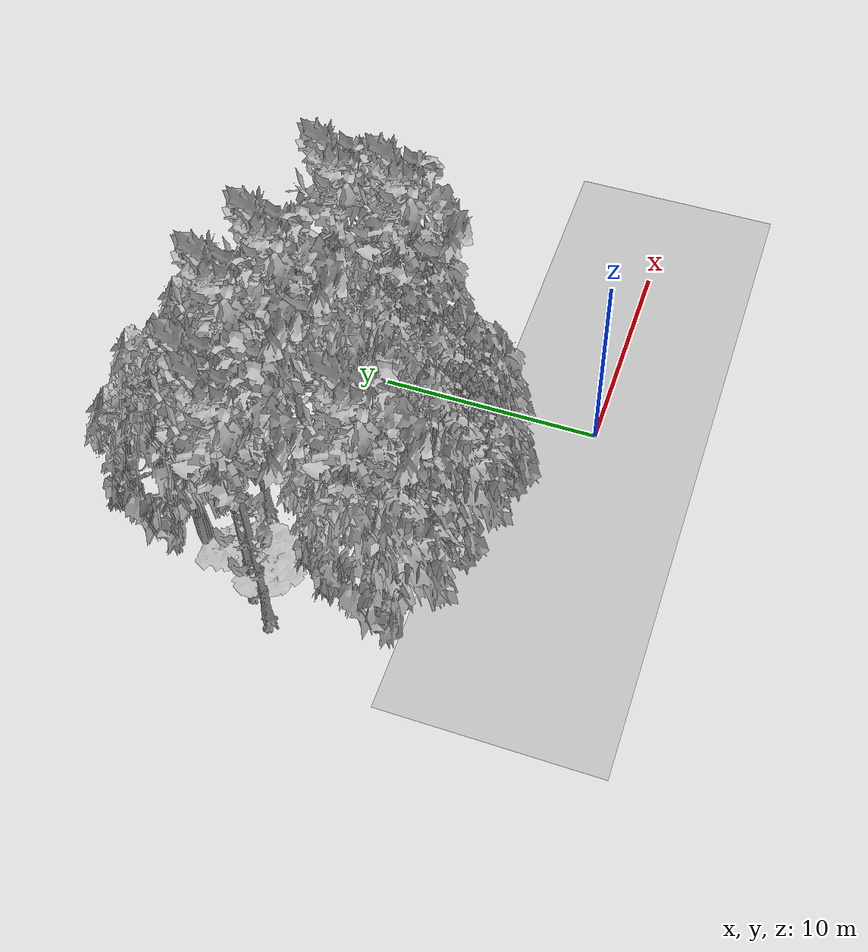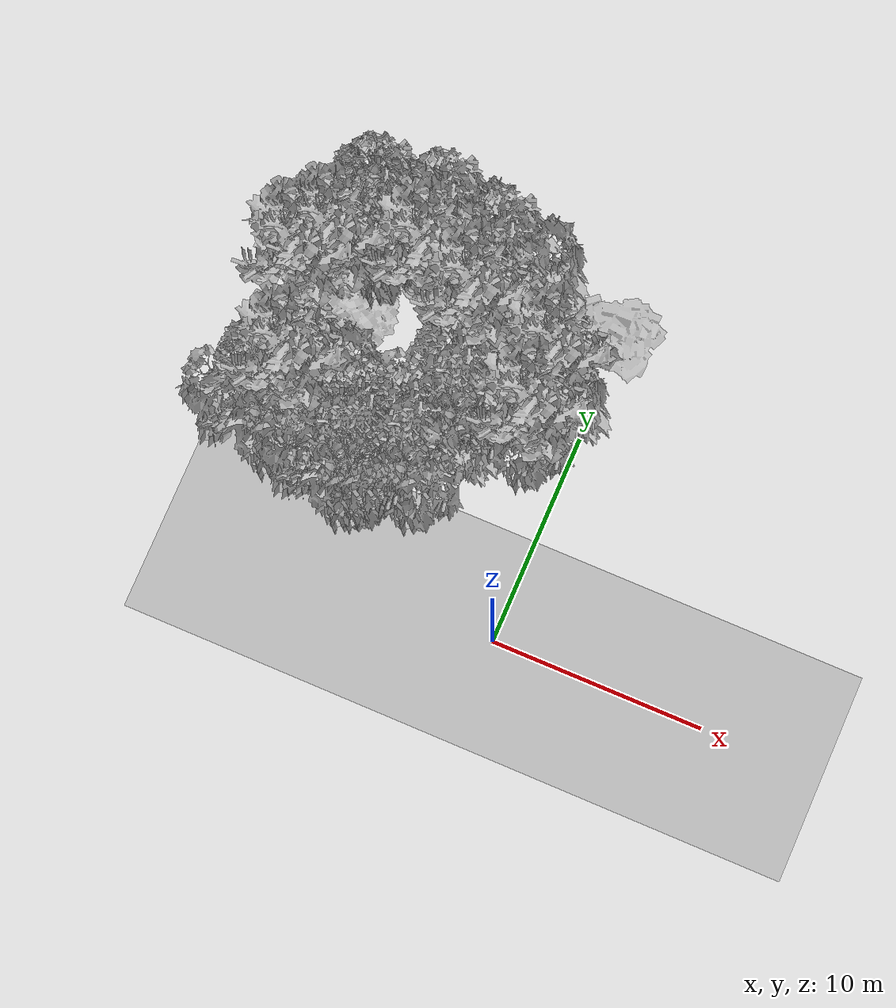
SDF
<sdf version="1.7">
 <world name="default">
  <model name="ground_plane">
   <static>1</static>
   <link name="link">
    <collision name="collision">
     <pose>-50 0 0 0 -0 0</pose>
     <geometry><plane><normal>0 0 1</normal><size>100 100</size></plane></geometry>
     <surface><contact><ode><min_depth>0.01</min_depth><max_vel>0</max_vel></ode></contact></surface>
    </collision>
    <visual name="grass">
     <cast_shadows>0</cast_shadows>
     <geometry>
      <mesh>
       <scale>0.5814285714285714 0.18142857142857144 0.1</scale>
       <uri>file://grass_plane/meshes/grass_plane.dae</uri>
      </mesh>
     </geometry>
    </visual>
   </link>
  </model>
  <model name="Tree 39">
   <static>1</static>
   <pose>-11.20924688243312 13.90650982413737 0 1.57079 -0 0</pose>
   <link name="link">
    <collision name="collision">
     <geometry><mesh><scale>3.5 5 3.5</scale><uri>model://tree_2/meshes/tree_2.obj</uri></mesh></geometry>
    </collision>
    <visual name="visual">
     <geometry><mesh><scale>3.5 5 3.5</scale><uri>model://tree_2/meshes/tree_2.obj</uri></mesh></geometry>
    </visual>
   </link>
  </model>
  <model name="Tree 50">
   <static>1</static>
   <pose>-11.510446245910678 6.082373281519526 0 1.57079 -0 0</pose>
   <link name="link">
    <collision name="collision">
     <geometry><mesh><scale>3.5 5 3.5</scale><uri>model://tree_2/meshes/tree_2.obj</uri></mesh></geometry>
    </collision>
    <visual name="visual">
     <geometry><mesh><scale>3.5 5 3.5</scale><uri>model://tree_2/meshes/tree_2.obj</uri></mesh></geometry>
    </visual>
   </link>
  </model>
  <model name="Tree 57">
   <static>1</static>
   <pose>-12.247379011109956 11.465169934383916 0 1.57079 -0 0</pose>
   <link name="link">
    <collision name="collision">
     <geometry><mesh><scale>3.5 5 3.5</scale><uri>model://tree_9/meshes/tree_9.obj</uri></mesh></geometry>
    </collision>
    <visual name="visual">
     <geometry><mesh><scale>3.5 5 3.5</scale><uri>model://tree_9/meshes/tree_9.obj</uri></mesh></geometry>
    </visual>
   </link>
  </model>
  <model name="Tree 64">
   <static>1</static>
   <pose>-5.319679257388884 8.58729724973804 0 1.57079 -0 0</pose>
   <link name="link">
    <collision name="collision">
     <geometry><mesh><scale>3 2 3</scale><uri>model://tree_3/meshes/tree_3.obj</uri></mesh></geometry>
    </collision>
    <visual name="visual">
     <geometry><mesh><scale>3 2 3</scale><uri>model://tree_3/meshes/tree_3.obj</uri></mesh></geometry>
    </visual>
   </link>
  </model>
  <model name="Tree 71">
   <static>1</static>
   <pose>-0.4105227731862797 14.567927577450835 0 1.57079 -0 0</pose>
   <link name="link">
    <collision name="collision">
     <geometry><mesh><scale>3 2 3</scale><uri>model://tree_3/meshes/tree_3.obj</uri></mesh></geometry>
    </collision>
    <visual name="visual">
     <geometry><mesh><scale>3 2 3</scale><uri>model://tree_3/meshes/tree_3.obj</uri></mesh></geometry>
    </visual>
   </link>
  </model>
  <model name="Tree 133">
   <static>1</static>
   <pose>-7.875646374536423 4.651870620772691 0 1.57079 -0 0</pose>
   <link name="link">
    <collision name="collision">
     <geometry><mesh><scale>3.5 5 3.5</scale><uri>model://tree_2/meshes/tree_2.obj</uri></mesh></geometry>
    </collision>
    <visual name="visual">
     <geometry><mesh><scale>3.5 5 3.5</scale><uri>model://tree_2/meshes/tree_2.obj</uri></mesh></geometry>
    </visual>
   </link>
  </model>
  <model name="Tree 149">
   <static>1</static>
   <pose>-1.7350411465494986 7.921373255774419 0 1.57079 -0 0</pose>
   <link name="link">
    <collision name="collision">
     <geometry><mesh><scale>3.5 5 3.5</scale><uri>model://tree_9/meshes/tree_9.obj</uri></mesh></geometry>
    </collision>
    <visual name="visual">
     <geometry><mesh><scale>3.5 5 3.5</scale><uri>model://tree_9/meshes/tree_9.obj</uri></mesh></geometry>
    </visual>
   </link>
  </model>
  <model name="Tree 203">
   <static>1</static>
   <pose>-8.065576167677882 4.343472900862199 0 1.57079 -0 0</pose>
   <link name="link">
    <collision name="collision">
     <geometry><mesh><scale>3.5 5 3.5</scale><uri>model://tree_2/meshes/tree_2.obj</uri></mesh></geometry>
    </collision>
    <visual name="visual">
     <geometry><mesh><scale>3.5 5 3.5</scale><uri>model://tree_2/meshes/tree_2.obj</uri></mesh></geometry>
    </visual>
   </link>
  </model>
  <model name="Tree 220">
   <static>1</static>
   <pose>-11.897047402137176 6.034604951431319 0 1.57079 -0 0</pose>
   <link name="link">
    <collision name="collision">
     <geometry><mesh><scale>3.5 5 3.5</scale><uri>model://tree_9/meshes/tree_9.obj</uri></mesh></geometry>
    </collision>
    <visual name="visual">
     <geometry><mesh><scale>3.5 5 3.5</scale><uri>model://tree_9/meshes/tree_9.obj</uri></mesh></geometry>
    </visual>
   </link>
  </model>
  <model name="Tree 244">
   <static>1</static>
   <pose>-5.391771114423328 13.843080955090443 0 1.57079 -0 0</pose>
   <link name="link">
    <collision name="collision">
     <geometry><mesh><scale>3.5 5 3.5</scale><uri>model://tree_2/meshes/tree_2.obj</uri></mesh></geometry>
    </collision>
    <visual name="visual">
     <geometry><mesh><scale>3.5 5 3.5</scale><uri>model://tree_2/meshes/tree_2.obj</uri></mesh></geometry>
    </visual>
   </link>
  </model>
  <model name="Tree 249">
   <static>1</static>
   <pose>-11.512095098617287 11.54771325122353 0 1.57079 -0 0</pose>
   <link name="link">
    <collision name="collision">
     <geometry><mesh><scale>4 2.5 4</scale><uri>model://tree_1/meshes/tree_1.obj</uri></mesh></geometry>
    </collision>
    <visual name="visual">
     <geometry><mesh><scale>4 2.5 4</scale><uri>model://tree_1/meshes/tree_1.obj</uri></mesh></geometry>
    </visual>
   </link>
  </model>
  <model name="Tree 295">
   <static>1</static>
   <pose>-4.916692277484188 8.06575641936682 0 1.57079 -0 0</pose>
   <link name="link">
    <collision name="collision">
     <geometry><mesh><scale>3.5 5 3.5</scale><uri>model://tree_2/meshes/tree_2.obj</uri></mesh></geometry>
    </collision>
    <visual name="visual">
     <geometry><mesh><scale>3.5 5 3.5</scale><uri>model://tree_2/meshes/tree_2.obj</uri></mesh></geometry>
    </visual>
   </link>
  </model>
  <model name="Tree 315">
   <static>1</static>
   <pose>-13.321517771124938 10.331661898140364 0 1.57079 -0 0</pose>
   <link name="link">
    <collision name="collision">
     <geometry><mesh><scale>3.5 5 3.5</scale><uri>model://tree_9/meshes/tree_9.obj</uri></mesh></geometry>
    </collision>
    <visual name="visual">
     <geometry><mesh><scale>3.5 5 3.5</scale><uri>model://tree_9/meshes/tree_9.obj</uri></mesh></geometry>
    </visual>
   </link>
  </model>
  <model name="Tree 319">
   <static>1</static>
   <pose>-1.7385748996638455 10.442766044967772 0 1.57079 -0 0</pose>
   <link name="link">
    <collision name="collision">
     <geometry><mesh><scale>3.5 5 3.5</scale><uri>model://tree_9/meshes/tree_9.obj</uri></mesh></geometry>
    </collision>
    <visual name="visual">
     <geometry><mesh><scale>3.5 5 3.5</scale><uri>model://tree_9/meshes/tree_9.obj</uri></mesh></geometry>
    </visual>
   </link>
  </model>
  <model name="Tree 343">
   <static>1</static>
   <pose>-6.021603552860462 9.78173987819325 0 1.57079 -0 0</pose>
   <link name="link">
    <collision name="collision">
     <geometry><mesh><scale>3 2 3</scale><uri>model://tree_3/meshes/tree_3.obj</uri></mesh></geometry>
    </collision>
    <visual name="visual">
     <geometry><mesh><scale>3 2 3</scale><uri>model://tree_3/meshes/tree_3.obj</uri></mesh></geometry>
    </visual>
   </link>
  </model>
  <model name="Tree 358">
   <static>1</static>
   <pose>-5.8800354924171145 5.156563990869152 0 1.57079 -0 0</pose>
   <link name="link">
    <collision name="collision">
     <geometry><mesh><scale>3.5 5 3.5</scale><uri>model://tree_2/meshes/tree_2.obj</uri></mesh></geometry>
    </collision>
    <visual name="visual">
     <geometry><mesh><scale>3.5 5 3.5</scale><uri>model://tree_2/meshes/tree_2.obj</uri></mesh></geometry>
    </visual>
   </link>
  </model>
  <model name="Tree 360">
   <static>1</static>
   <pose>-12.443013227035152 4.975589786857164 0 1.57079 -0 0</pose>
   <link name="link">
    <collision name="collision">
     <geometry><mesh><scale>3.5 5 3.5</scale><uri>model://tree_2/meshes/tree_2.obj</uri></mesh></geometry>
    </collision>
    <visual name="visual">
     <geometry><mesh><scale>3.5 5 3.5</scale><uri>model://tree_2/meshes/tree_2.obj</uri></mesh></geometry>
    </visual>
   </link>
  </model>
  <model name="Tree 382">
   <static>1</static>
   <pose>-8.624834578090677 4.10194966567688 0 1.57079 -0 0</pose>
   <link name="link">
    <collision name="collision">
     <geometry><mesh><scale>3.5 5 3.5</scale><uri>model://tree_2/meshes/tree_2.obj</uri></mesh></geometry>
    </collision>
    <visual name="visual">
     <geometry><mesh><scale>3.5 5 3.5</scale><uri>model://tree_2/meshes/tree_2.obj</uri></mesh></geometry>
    </visual>
   </link>
  </model>
  <model name="Tree 420">
   <static>1</static>
   <pose>-5.829207655193862 11.60069624134443 0 1.57079 -0 0</pose>
   <link name="link">
    <collision name="collision">
     <geometry><mesh><scale>3.5 5 3.5</scale><uri>model://tree_9/meshes/tree_9.obj</uri></mesh></geometry>
    </collision>
    <visual name="visual">
     <geometry><mesh><scale>3.5 5 3.5</scale><uri>model://tree_9/meshes/tree_9.obj</uri></mesh></geometry>
    </visual>
   </link>
  </model>
  <model name="Tree 451">
   <static>1</static>
   <pose>-8.35687245190661 14.43556690660489 0 1.57079 -0 0</pose>
   <link name="link">
    <collision name="collision">
     <geometry><mesh><scale>3.5 5 3.5</scale><uri>model://tree_2/meshes/tree_2.obj</uri></mesh></geometry>
    </collision>
    <visual name="visual">
     <geometry><mesh><scale>3.5 5 3.5</scale><uri>model://tree_2/meshes/tree_2.obj</uri></mesh></geometry>
    </visual>
   </link>
  </model>
  <model name="Tree 460">
   <static>1</static>
   <pose>-8.391934898939866 12.42194887557439 0 1.57079 -0 0</pose>
   <link name="link">
    <collision name="collision">
     <geometry><mesh><scale>3.5 5 3.5</scale><uri>model://tree_9/meshes/tree_9.obj</uri></mesh></geometry>
    </collision>
    <visual name="visual">
     <geometry><mesh><scale>3.5 5 3.5</scale><uri>model://tree_9/meshes/tree_9.obj</uri></mesh></geometry>
    </visual>
   </link>
  </model>
  <model name="Tree 518">
   <static>1</static>
   <pose>-11.293918095963832 13.955424670182296 0 1.57079 -0 0</pose>
   <link name="link">
    <collision name="collision">
     <geometry><mesh><scale>3.5 5 3.5</scale><uri>model://tree_2/meshes/tree_2.obj</uri></mesh></geometry>
    </collision>
    <visual name="visual">
     <geometry><mesh><scale>3.5 5 3.5</scale><uri>model://tree_2/meshes/tree_2.obj</uri></mesh></geometry>
    </visual>
   </link>
  </model>
  <model name="Tree 539">
   <static>1</static>
   <pose>-2.2062563621798432 8.71295546891858 0 1.57079 -0 0</pose>
   <link name="link">
    <collision name="collision">
     <geometry><mesh><scale>3.5 5 3.5</scale><uri>model://tree_2/meshes/tree_2.obj</uri></mesh></geometry>
    </collision>
    <visual name="visual">
     <geometry><mesh><scale>3.5 5 3.5</scale><uri>model://tree_2/meshes/tree_2.obj</uri></mesh></geometry>
    </visual>
   </link>
  </model>
 </world>
</sdf>
